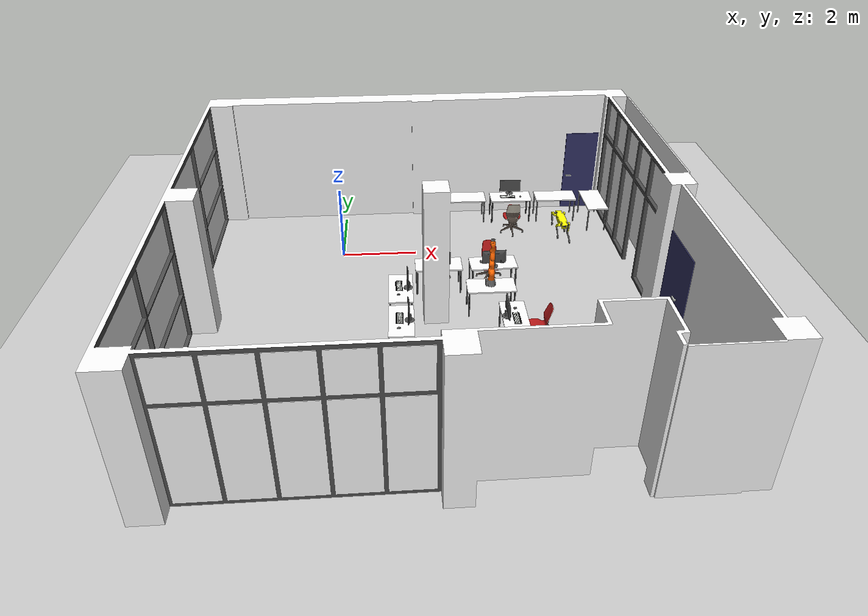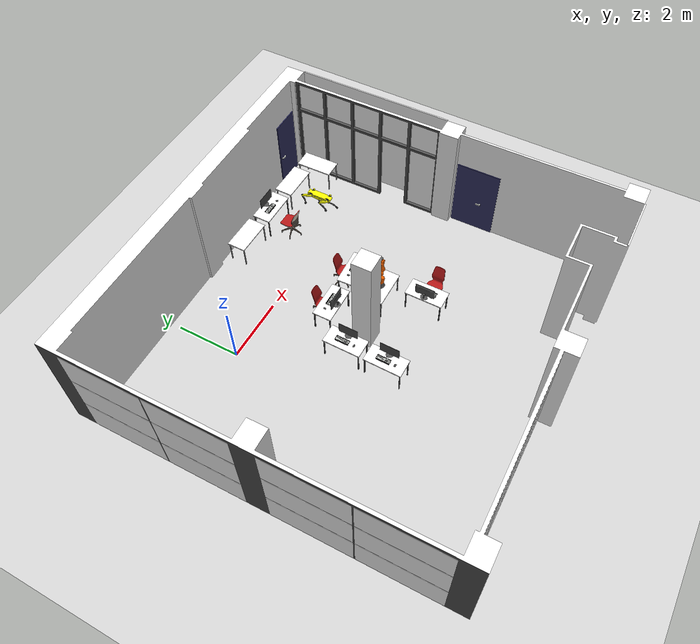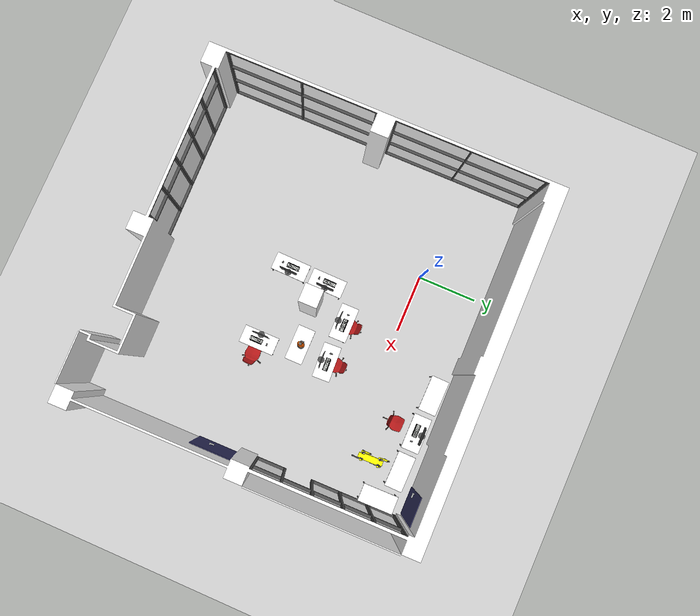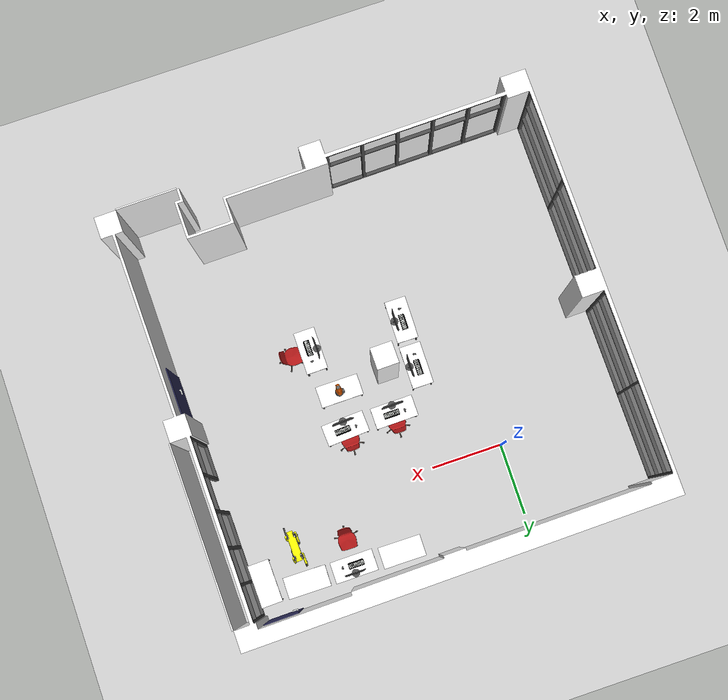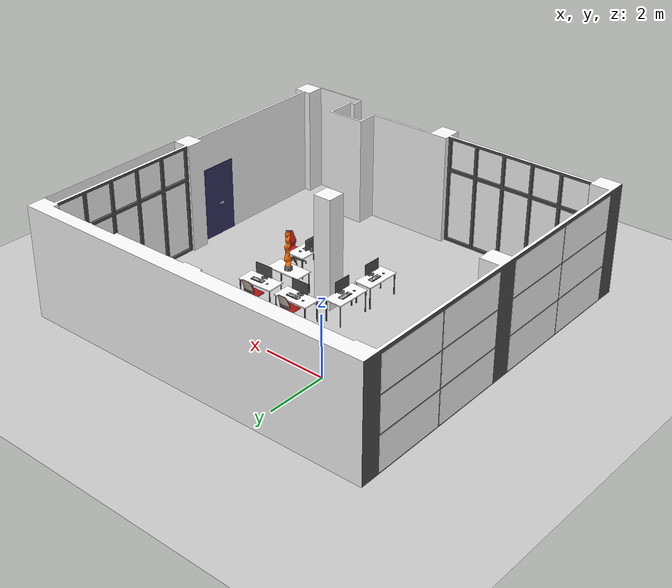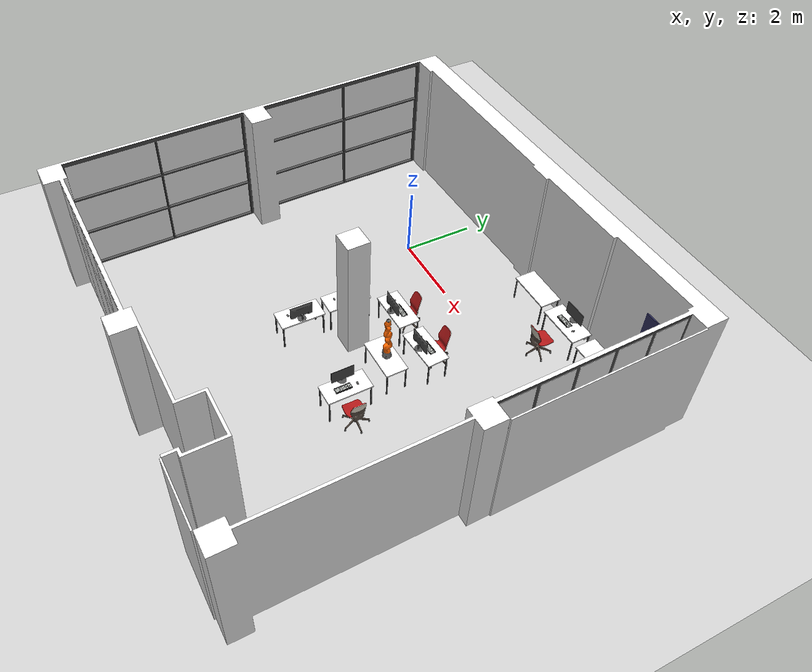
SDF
<sdf version="1.7">
 <world name="default">
  <model name="ground_plane">
   <static>1</static>
   <link name="link">
    <collision name="collision">
     <geometry><plane><normal>0 0 1</normal><size>100 100</size></plane></geometry>
     <surface>
      <contact><collide_bitmask>65535</collide_bitmask></contact>
      <friction><ode><mu>100</mu><mu2>50</mu2></ode></friction>
     </surface>
    </collision>
    <visual name="visual">
     <cast_shadows>0</cast_shadows>
     <geometry><plane><normal>0 0 1</normal><size>100 100</size></plane></geometry>
     <material>
      <script><uri>file://media/materials/scripts/gazebo.material</uri><name>Gazebo/Grey</name></script>
     </material>
    </visual>
   </link>
  </model>
  <model name="stol_i_komp">
   <link name="link_1">
    <inertial>
     <mass>1</mass>
     <inertia>
      <ixx>0.166667</ixx>
      <ixy>0</ixy>
      <ixz>0</ixz>
      <iyy>0.166667</iyy>
      <iyz>0</iyz>
      <izz>0.166667</izz>
     </inertia>
    </inertial>
    <visual name="visual">
     <geometry>
      <mesh>
       <uri>/home/slaven/catkin_ws/src/my_simulations/models/meshes/stol_i_komp.dae</uri>
       <scale>1 1 1</scale>
      </mesh>
     </geometry>
    </visual>
    <collision name="collision">
     <geometry>
      <mesh>
       <uri>/home/slaven/catkin_ws/src/my_simulations/models/meshes/stol_i_komp.dae</uri>
       <scale>1 1 1</scale>
      </mesh>
     </geometry>
     <surface>
      <friction>
       <ode><mu>1</mu><mu2>1</mu2><fdir1>0 0 0</fdir1><slip1>0</slip1><slip2>0</slip2></ode>
       <torsional>
        <coefficient>1</coefficient>
        <patch_radius>0</patch_radius>
        <surface_radius>0</surface_radius>
        <use_patch_radius>1</use_patch_radius>
        <ode><slip>0</slip></ode>
       </torsional>
      </friction>
      <bounce><restitution_coefficient>0</restitution_coefficient><threshold>1e+06</threshold></bounce>
      <contact>
       <collide_without_contact>0</collide_without_contact>
       <collide_without_contact_bitmask>1</collide_without_contact_bitmask>
       <collide_bitmask>1</collide_bitmask>
       <ode>
        <soft_cfm>0</soft_cfm>
        <soft_erp>0.2</soft_erp>
        <kp>1e+13</kp>
        <kd>1</kd>
        <max_vel>0.01</max_vel>
        <min_depth>0</min_depth>
       </ode>
       <bullet>
        <split_impulse>1</split_impulse>
        <split_impulse_penetration_threshold>-0.01</split_impulse_penetration_threshold>
        <soft_cfm>0</soft_cfm>
        <soft_erp>0.2</soft_erp>
        <kp>1e+13</kp>
        <kd>1</kd>
       </bullet>
      </contact>
     </surface>
    </collision>
   </link>
   <static>0</static>
   <pose>1.5366 -2.81232 0.699999 -0 2e-06 1.56764</pose>
  </model>
  <model name="stol_i_komp_0">
   <link name="link_1">
    <inertial>
     <mass>1</mass>
     <inertia>
      <ixx>0.166667</ixx>
      <ixy>0</ixy>
      <ixz>0</ixz>
      <iyy>0.166667</iyy>
      <iyz>0</iyz>
      <izz>0.166667</izz>
     </inertia>
    </inertial>
    <visual name="visual">
     <geometry>
      <mesh>
       <uri>/home/slaven/catkin_ws/src/my_simulations/models/meshes/stol_i_komp.dae</uri>
       <scale>1 1 1</scale>
      </mesh>
     </geometry>
    </visual>
    <collision name="collision">
     <geometry>
      <mesh>
       <uri>/home/slaven/catkin_ws/src/my_simulations/models/meshes/stol_i_komp.dae</uri>
       <scale>1 1 1</scale>
      </mesh>
     </geometry>
     <surface>
      <friction>
       <ode><mu>1</mu><mu2>1</mu2><fdir1>0 0 0</fdir1><slip1>0</slip1><slip2>0</slip2></ode>
       <torsional>
        <coefficient>1</coefficient>
        <patch_radius>0</patch_radius>
        <surface_radius>0</surface_radius>
        <use_patch_radius>1</use_patch_radius>
        <ode><slip>0</slip></ode>
       </torsional>
      </friction>
      <bounce><restitution_coefficient>0</restitution_coefficient><threshold>1e+06</threshold></bounce>
      <contact>
       <collide_without_contact>0</collide_without_contact>
       <collide_without_contact_bitmask>1</collide_without_contact_bitmask>
       <collide_bitmask>1</collide_bitmask>
       <ode>
        <soft_cfm>0</soft_cfm>
        <soft_erp>0.2</soft_erp>
        <kp>1e+13</kp>
        <kd>1</kd>
        <max_vel>0.01</max_vel>
        <min_depth>0</min_depth>
       </ode>
       <bullet>
        <split_impulse>1</split_impulse>
        <split_impulse_penetration_threshold>-0.01</split_impulse_penetration_threshold>
        <soft_cfm>0</soft_cfm>
        <soft_erp>0.2</soft_erp>
        <kp>1e+13</kp>
        <kd>1</kd>
       </bullet>
      </contact>
     </surface>
    </collision>
   </link>
   <static>0</static>
   <pose>1.52345 -4.13796 0.699999 0 -2e-06 1.56027</pose>
  </model>
  <model name="stol_i_komp_1">
   <link name="link_1">
    <inertial>
     <mass>1</mass>
     <inertia>
      <ixx>0.166667</ixx>
      <ixy>0</ixy>
      <ixz>0</ixz>
      <iyy>0.166667</iyy>
      <iyz>0</iyz>
      <izz>0.166667</izz>
     </inertia>
    </inertial>
    <visual name="visual">
     <geometry>
      <mesh>
       <uri>/home/slaven/catkin_ws/src/my_simulations/models/meshes/stol_i_komp.dae</uri>
       <scale>1 1 1</scale>
      </mesh>
     </geometry>
    </visual>
    <collision name="collision">
     <geometry>
      <mesh>
       <uri>/home/slaven/catkin_ws/src/my_simulations/models/meshes/stol_i_komp.dae</uri>
       <scale>1 1 1</scale>
      </mesh>
     </geometry>
     <surface>
      <friction>
       <ode><mu>1</mu><mu2>1</mu2><fdir1>0 0 0</fdir1><slip1>0</slip1><slip2>0</slip2></ode>
       <torsional>
        <coefficient>1</coefficient>
        <patch_radius>0</patch_radius>
        <surface_radius>0</surface_radius>
        <use_patch_radius>1</use_patch_radius>
        <ode><slip>0</slip></ode>
       </torsional>
      </friction>
      <bounce><restitution_coefficient>0</restitution_coefficient><threshold>1e+06</threshold></bounce>
      <contact>
       <collide_without_contact>0</collide_without_contact>
       <collide_without_contact_bitmask>1</collide_without_contact_bitmask>
       <collide_bitmask>1</collide_bitmask>
       <ode>
        <soft_cfm>0</soft_cfm>
        <soft_erp>0.2</soft_erp>
        <kp>1e+13</kp>
        <kd>1</kd>
        <max_vel>0.01</max_vel>
        <min_depth>0</min_depth>
       </ode>
       <bullet>
        <split_impulse>1</split_impulse>
        <split_impulse_penetration_threshold>-0.01</split_impulse_penetration_threshold>
        <soft_cfm>0</soft_cfm>
        <soft_erp>0.2</soft_erp>
        <kp>1e+13</kp>
        <kd>1</kd>
       </bullet>
      </contact>
     </surface>
    </collision>
   </link>
   <static>0</static>
   <pose>3.94366 -1.78067 0.699999 0 -2e-06 0.051701</pose>
  </model>
  <model name="stol_i_komp_2">
   <link name="link_1">
    <inertial>
     <mass>1</mass>
     <inertia>
      <ixx>0.166667</ixx>
      <ixy>0</ixy>
      <ixz>0</ixz>
      <iyy>0.166667</iyy>
      <iyz>0</iyz>
      <izz>0.166667</izz>
     </inertia>
    </inertial>
    <visual name="visual">
     <geometry>
      <mesh>
       <uri>/home/slaven/catkin_ws/src/my_simulations/models/meshes/stol_i_komp.dae</uri>
       <scale>1 1 1</scale>
      </mesh>
     </geometry>
    </visual>
    <collision name="collision">
     <geometry>
      <mesh>
       <uri>/home/slaven/catkin_ws/src/my_simulations/models/meshes/stol_i_komp.dae</uri>
       <scale>1 1 1</scale>
      </mesh>
     </geometry>
     <surface>
      <friction>
       <ode><mu>1</mu><mu2>1</mu2><fdir1>0 0 0</fdir1><slip1>0</slip1><slip2>0</slip2></ode>
       <torsional>
        <coefficient>1</coefficient>
        <patch_radius>0</patch_radius>
        <surface_radius>0</surface_radius>
        <use_patch_radius>1</use_patch_radius>
        <ode><slip>0</slip></ode>
       </torsional>
      </friction>
      <bounce><restitution_coefficient>0</restitution_coefficient><threshold>1e+06</threshold></bounce>
      <contact>
       <collide_without_contact>0</collide_without_contact>
       <collide_without_contact_bitmask>1</collide_without_contact_bitmask>
       <collide_bitmask>1</collide_bitmask>
       <ode>
        <soft_cfm>0</soft_cfm>
        <soft_erp>0.2</soft_erp>
        <kp>1e+13</kp>
        <kd>1</kd>
        <max_vel>0.01</max_vel>
        <min_depth>0</min_depth>
       </ode>
       <bullet>
        <split_impulse>1</split_impulse>
        <split_impulse_penetration_threshold>-0.01</split_impulse_penetration_threshold>
        <soft_cfm>0</soft_cfm>
        <soft_erp>0.2</soft_erp>
        <kp>1e+13</kp>
        <kd>1</kd>
       </bullet>
      </contact>
     </surface>
    </collision>
   </link>
   <static>0</static>
   <pose>2.53198 -1.77767 0.699999 0 2e-06 0.009271</pose>
  </model>
  <model name="stol_i_komp_3">
   <link name="link_1">
    <inertial>
     <mass>1</mass>
     <inertia>
      <ixx>0.166667</ixx>
      <ixy>0</ixy>
      <ixz>0</ixz>
      <iyy>0.166667</iyy>
      <iyz>0</iyz>
      <izz>0.166667</izz>
     </inertia>
    </inertial>
    <visual name="visual">
     <geometry>
      <mesh>
       <uri>/home/slaven/catkin_ws/src/my_simulations/models/meshes/stol_i_komp.dae</uri>
       <scale>1 1 1</scale>
      </mesh>
     </geometry>
    </visual>
    <collision name="collision">
     <geometry>
      <mesh>
       <uri>/home/slaven/catkin_ws/src/my_simulations/models/meshes/stol_i_komp.dae</uri>
       <scale>1 1 1</scale>
      </mesh>
     </geometry>
     <surface>
      <friction>
       <ode><mu>1</mu><mu2>1</mu2><fdir1>0 0 0</fdir1><slip1>0</slip1><slip2>0</slip2></ode>
       <torsional>
        <coefficient>1</coefficient>
        <patch_radius>0</patch_radius>
        <surface_radius>0</surface_radius>
        <use_patch_radius>1</use_patch_radius>
        <ode><slip>0</slip></ode>
       </torsional>
      </friction>
      <bounce><restitution_coefficient>0</restitution_coefficient><threshold>1e+06</threshold></bounce>
      <contact>
       <collide_without_contact>0</collide_without_contact>
       <collide_without_contact_bitmask>1</collide_without_contact_bitmask>
       <collide_bitmask>1</collide_bitmask>
       <ode>
        <soft_cfm>0</soft_cfm>
        <soft_erp>0.2</soft_erp>
        <kp>1e+13</kp>
        <kd>1</kd>
        <max_vel>0.01</max_vel>
        <min_depth>0</min_depth>
       </ode>
       <bullet>
        <split_impulse>1</split_impulse>
        <split_impulse_penetration_threshold>-0.01</split_impulse_penetration_threshold>
        <soft_cfm>0</soft_cfm>
        <soft_erp>0.2</soft_erp>
        <kp>1e+13</kp>
        <kd>1</kd>
       </bullet>
      </contact>
     </surface>
    </collision>
   </link>
   <static>0</static>
   <pose>4.1732 -4.12466 0.699999 0 -2e-06 -1.56533</pose>
  </model>
  <model name="stol">
   <link name="link_0">
    <inertial>
     <mass>1</mass>
     <inertia>
      <ixx>0.166667</ixx>
      <ixy>0</ixy>
      <ixz>0</ixz>
      <iyy>0.166667</iyy>
      <iyz>0</iyz>
      <izz>0.166667</izz>
     </inertia>
    </inertial>
    <visual name="visual">
     <geometry>
      <mesh><uri>/home/slaven/catkin_ws/src/my_simulations/models/meshes/stol.dae</uri><scale>1 1 1</scale></mesh>
     </geometry>
    </visual>
    <collision name="collision">
     <geometry>
      <mesh><uri>/home/slaven/catkin_ws/src/my_simulations/models/meshes/stol.dae</uri><scale>1 1 1</scale></mesh>
     </geometry>
     <surface>
      <friction>
       <ode><mu>1</mu><mu2>1</mu2><fdir1>0 0 0</fdir1><slip1>0</slip1><slip2>0</slip2></ode>
       <torsional>
        <coefficient>1</coefficient>
        <patch_radius>0</patch_radius>
        <surface_radius>0</surface_radius>
        <use_patch_radius>1</use_patch_radius>
        <ode><slip>0</slip></ode>
       </torsional>
      </friction>
      <bounce><restitution_coefficient>0</restitution_coefficient><threshold>1e+06</threshold></bounce>
      <contact>
       <collide_without_contact>0</collide_without_contact>
       <collide_without_contact_bitmask>1</collide_without_contact_bitmask>
       <collide_bitmask>1</collide_bitmask>
       <ode>
        <soft_cfm>0</soft_cfm>
        <soft_erp>0.2</soft_erp>
        <kp>1e+13</kp>
        <kd>1</kd>
        <max_vel>0.01</max_vel>
        <min_depth>0</min_depth>
       </ode>
       <bullet>
        <split_impulse>1</split_impulse>
        <split_impulse_penetration_threshold>-0.01</split_impulse_penetration_threshold>
        <soft_cfm>0</soft_cfm>
        <soft_erp>0.2</soft_erp>
        <kp>1e+13</kp>
        <kd>1</kd>
       </bullet>
      </contact>
     </surface>
    </collision>
   </link>
   <static>0</static>
   <pose>3.76972 -2.81672 0.699999 0 -2e-06 0.005732</pose>
  </model>
  <model name="kuka">
   <link name="link_1">
    <inertial>
     <mass>1</mass>
     <inertia>
      <ixx>0.166667</ixx>
      <ixy>0</ixy>
      <ixz>0</ixz>
      <iyy>0.166667</iyy>
      <iyz>0</iyz>
      <izz>0.166667</izz>
     </inertia>
    </inertial>
    <pose>-0.00628 -0.063343 0.019073 0 -0 0</pose>
    <visual name="visual">
     <geometry>
      <mesh>
       <uri>/home/slaven/catkin_ws/src/my_simulations/models/meshes/LBR IIWA 14 R820.dae</uri>
       <scale>1 1 1</scale>
      </mesh>
     </geometry>
    </visual>
    <collision name="collision">
     <geometry>
      <mesh>
       <uri>/home/slaven/catkin_ws/src/my_simulations/models/meshes/LBR IIWA 14 R820.dae</uri>
       <scale>1 1 1</scale>
      </mesh>
     </geometry>
     <surface>
      <friction>
       <ode><mu>1</mu><mu2>1</mu2><fdir1>0 0 0</fdir1><slip1>0</slip1><slip2>0</slip2></ode>
       <torsional>
        <coefficient>1</coefficient>
        <patch_radius>0</patch_radius>
        <surface_radius>0</surface_radius>
        <use_patch_radius>1</use_patch_radius>
        <ode><slip>0</slip></ode>
       </torsional>
      </friction>
      <bounce><restitution_coefficient>0</restitution_coefficient><threshold>1e+06</threshold></bounce>
      <contact>
       <collide_without_contact>0</collide_without_contact>
       <collide_without_contact_bitmask>1</collide_without_contact_bitmask>
       <collide_bitmask>1</collide_bitmask>
       <ode>
        <soft_cfm>0</soft_cfm>
        <soft_erp>0.2</soft_erp>
        <kp>1e+13</kp>
        <kd>1</kd>
        <max_vel>0.01</max_vel>
        <min_depth>0</min_depth>
       </ode>
       <bullet>
        <split_impulse>1</split_impulse>
        <split_impulse_penetration_threshold>-0.01</split_impulse_penetration_threshold>
        <soft_cfm>0</soft_cfm>
        <soft_erp>0.2</soft_erp>
        <kp>1e+13</kp>
        <kd>1</kd>
       </bullet>
      </contact>
     </surface>
    </collision>
   </link>
   <static>0</static>
   <pose>3.77941 -2.71983 0.715929 -0 -2.6e-05 0.011747</pose>
  </model>
  <model name="zidovi3">
   <link name="link_0">
    <inertial>
     <mass>1</mass>
     <inertia>
      <ixx>0.166667</ixx>
      <ixy>0</ixy>
      <ixz>0</ixz>
      <iyy>0.166667</iyy>
      <iyz>0</iyz>
      <izz>0.166667</izz>
     </inertia>
    </inertial>
    <pose>-0 -2e-06 0 0 -0 0</pose>
    <visual name="visual">
     <geometry>
      <mesh>
       <uri>/home/slaven/catkin_ws/src/my_simulations/models/meshes/zidovi3.dae</uri>
       <scale>1 1 1</scale>
      </mesh>
     </geometry>
    </visual>
    <collision name="collision">
     <geometry>
      <mesh>
       <uri>/home/slaven/catkin_ws/src/my_simulations/models/meshes/zidovi3.dae</uri>
       <scale>1 1 1</scale>
      </mesh>
     </geometry>
     <surface>
      <friction>
       <ode><mu>1</mu><mu2>1</mu2><fdir1>0 0 0</fdir1><slip1>0</slip1><slip2>0</slip2></ode>
       <torsional>
        <coefficient>1</coefficient>
        <patch_radius>0</patch_radius>
        <surface_radius>0</surface_radius>
        <use_patch_radius>1</use_patch_radius>
        <ode><slip>0</slip></ode>
       </torsional>
      </friction>
      <bounce><restitution_coefficient>0</restitution_coefficient><threshold>1e+06</threshold></bounce>
      <contact>
       <collide_without_contact>0</collide_without_contact>
       <collide_without_contact_bitmask>1</collide_without_contact_bitmask>
       <collide_bitmask>1</collide_bitmask>
       <ode>
        <soft_cfm>0</soft_cfm>
        <soft_erp>0.2</soft_erp>
        <kp>1e+13</kp>
        <kd>1</kd>
        <max_vel>0.01</max_vel>
        <min_depth>0</min_depth>
       </ode>
       <bullet>
        <split_impulse>1</split_impulse>
        <split_impulse_penetration_threshold>-0.01</split_impulse_penetration_threshold>
        <soft_cfm>0</soft_cfm>
        <soft_erp>0.2</soft_erp>
        <kp>1e+13</kp>
        <kd>1</kd>
       </bullet>
      </contact>
     </surface>
    </collision>
   </link>
   <static>0</static>
   <pose>2.38925 -3.02063 -0 0 -0 0.013755</pose>
  </model>
  <model name="stol_i_komp_5">
   <link name="link_1">
    <inertial>
     <mass>1</mass>
     <inertia>
      <ixx>0.166667</ixx>
      <ixy>0</ixy>
      <ixz>0</ixz>
      <iyy>0.166667</iyy>
      <iyz>0</iyz>
      <izz>0.166667</izz>
     </inertia>
    </inertial>
    <visual name="visual">
     <geometry>
      <mesh>
       <uri>/home/slaven/catkin_ws/src/my_simulations/models/meshes/stol_i_komp.dae</uri>
       <scale>1 1 1</scale>
      </mesh>
     </geometry>
    </visual>
    <collision name="collision">
     <geometry>
      <mesh>
       <uri>/home/slaven/catkin_ws/src/my_simulations/models/meshes/stol_i_komp.dae</uri>
       <scale>1 1 1</scale>
      </mesh>
     </geometry>
     <surface>
      <friction>
       <ode><mu>1</mu><mu2>1</mu2><fdir1>0 0 0</fdir1><slip1>0</slip1><slip2>0</slip2></ode>
       <torsional>
        <coefficient>1</coefficient>
        <patch_radius>0</patch_radius>
        <surface_radius>0</surface_radius>
        <use_patch_radius>1</use_patch_radius>
        <ode><slip>0</slip></ode>
       </torsional>
      </friction>
      <bounce><restitution_coefficient>0</restitution_coefficient><threshold>1e+06</threshold></bounce>
      <contact>
       <collide_without_contact>0</collide_without_contact>
       <collide_without_contact_bitmask>1</collide_without_contact_bitmask>
       <collide_bitmask>1</collide_bitmask>
       <ode>
        <soft_cfm>0</soft_cfm>
        <soft_erp>0.2</soft_erp>
        <kp>1e+13</kp>
        <kd>1</kd>
        <max_vel>0.01</max_vel>
        <min_depth>0</min_depth>
       </ode>
       <bullet>
        <split_impulse>1</split_impulse>
        <split_impulse_penetration_threshold>-0.01</split_impulse_penetration_threshold>
        <soft_cfm>0</soft_cfm>
        <soft_erp>0.2</soft_erp>
        <kp>1e+13</kp>
        <kd>1</kd>
       </bullet>
      </contact>
     </surface>
    </collision>
   </link>
   <static>0</static>
   <pose>4.91228 1.84464 0.699999 0 2e-06 -3.13605</pose>
  </model>
  <model name="stol_6">
   <link name="link_0">
    <inertial>
     <mass>1</mass>
     <inertia>
      <ixx>0.166667</ixx>
      <ixy>0</ixy>
      <ixz>0</ixz>
      <iyy>0.166667</iyy>
      <iyz>0</iyz>
      <izz>0.166667</izz>
     </inertia>
    </inertial>
    <visual name="visual">
     <geometry>
      <mesh><uri>/home/slaven/catkin_ws/src/my_simulations/models/meshes/stol.dae</uri><scale>1 1 1</scale></mesh>
     </geometry>
    </visual>
    <collision name="collision">
     <geometry>
      <mesh><uri>/home/slaven/catkin_ws/src/my_simulations/models/meshes/stol.dae</uri><scale>1 1 1</scale></mesh>
     </geometry>
     <surface>
      <friction>
       <ode><mu>1</mu><mu2>1</mu2><fdir1>0 0 0</fdir1><slip1>0</slip1><slip2>0</slip2></ode>
       <torsional>
        <coefficient>1</coefficient>
        <patch_radius>0</patch_radius>
        <surface_radius>0</surface_radius>
        <use_patch_radius>1</use_patch_radius>
        <ode><slip>0</slip></ode>
       </torsional>
      </friction>
      <bounce><restitution_coefficient>0</restitution_coefficient><threshold>1e+06</threshold></bounce>
      <contact>
       <collide_without_contact>0</collide_without_contact>
       <collide_without_contact_bitmask>1</collide_without_contact_bitmask>
       <collide_bitmask>1</collide_bitmask>
       <ode>
        <soft_cfm>0</soft_cfm>
        <soft_erp>0.2</soft_erp>
        <kp>1e+13</kp>
        <kd>1</kd>
        <max_vel>0.01</max_vel>
        <min_depth>0</min_depth>
       </ode>
       <bullet>
        <split_impulse>1</split_impulse>
        <split_impulse_penetration_threshold>-0.01</split_impulse_penetration_threshold>
        <soft_cfm>0</soft_cfm>
        <soft_erp>0.2</soft_erp>
        <kp>1e+13</kp>
        <kd>1</kd>
       </bullet>
      </contact>
     </surface>
    </collision>
   </link>
   <static>0</static>
   <pose>3.55228 1.88847 0.699999 0 -2e-06 -0.006371</pose>
  </model>
  <model name="stol_7">
   <link name="link_0">
    <inertial>
     <mass>1</mass>
     <inertia>
      <ixx>0.166667</ixx>
      <ixy>0</ixy>
      <ixz>0</ixz>
      <iyy>0.166667</iyy>
      <iyz>0</iyz>
      <izz>0.166667</izz>
     </inertia>
    </inertial>
    <visual name="visual">
     <geometry>
      <mesh><uri>/home/slaven/catkin_ws/src/my_simulations/models/meshes/stol.dae</uri><scale>1 1 1</scale></mesh>
     </geometry>
    </visual>
    <collision name="collision">
     <geometry>
      <mesh><uri>/home/slaven/catkin_ws/src/my_simulations/models/meshes/stol.dae</uri><scale>1 1 1</scale></mesh>
     </geometry>
     <surface>
      <friction>
       <ode><mu>1</mu><mu2>1</mu2><fdir1>0 0 0</fdir1><slip1>0</slip1><slip2>0</slip2></ode>
       <torsional>
        <coefficient>1</coefficient>
        <patch_radius>0</patch_radius>
        <surface_radius>0</surface_radius>
        <use_patch_radius>1</use_patch_radius>
        <ode><slip>0</slip></ode>
       </torsional>
      </friction>
      <bounce><restitution_coefficient>0</restitution_coefficient><threshold>1e+06</threshold></bounce>
      <contact>
       <collide_without_contact>0</collide_without_contact>
       <collide_without_contact_bitmask>1</collide_without_contact_bitmask>
       <collide_bitmask>1</collide_bitmask>
       <ode>
        <soft_cfm>0</soft_cfm>
        <soft_erp>0.2</soft_erp>
        <kp>1e+13</kp>
        <kd>1</kd>
        <max_vel>0.01</max_vel>
        <min_depth>0</min_depth>
       </ode>
       <bullet>
        <split_impulse>1</split_impulse>
        <split_impulse_penetration_threshold>-0.01</split_impulse_penetration_threshold>
        <soft_cfm>0</soft_cfm>
        <soft_erp>0.2</soft_erp>
        <kp>1e+13</kp>
        <kd>1</kd>
       </bullet>
      </contact>
     </surface>
    </collision>
   </link>
   <static>0</static>
   <pose>6.25359 1.83429 0.699999 -0 2e-06 -0.008669</pose>
  </model>
  <model name="stol_8">
   <link name="link_0">
    <inertial>
     <mass>1</mass>
     <inertia>
      <ixx>0.166667</ixx>
      <ixy>0</ixy>
      <ixz>0</ixz>
      <iyy>0.166667</iyy>
      <iyz>0</iyz>
      <izz>0.166667</izz>
     </inertia>
    </inertial>
    <visual name="visual">
     <geometry>
      <mesh><uri>/home/slaven/catkin_ws/src/my_simulations/models/meshes/stol.dae</uri><scale>1 1 1</scale></mesh>
     </geometry>
    </visual>
    <collision name="collision">
     <geometry>
      <mesh><uri>/home/slaven/catkin_ws/src/my_simulations/models/meshes/stol.dae</uri><scale>1 1 1</scale></mesh>
     </geometry>
     <surface>
      <friction>
       <ode><mu>1</mu><mu2>1</mu2><fdir1>0 0 0</fdir1><slip1>0</slip1><slip2>0</slip2></ode>
       <torsional>
        <coefficient>1</coefficient>
        <patch_radius>0</patch_radius>
        <surface_radius>0</surface_radius>
        <use_patch_radius>1</use_patch_radius>
        <ode><slip>0</slip></ode>
       </torsional>
      </friction>
      <bounce><restitution_coefficient>0</restitution_coefficient><threshold>1e+06</threshold></bounce>
      <contact>
       <collide_without_contact>0</collide_without_contact>
       <collide_without_contact_bitmask>1</collide_without_contact_bitmask>
       <collide_bitmask>1</collide_bitmask>
       <ode>
        <soft_cfm>0</soft_cfm>
        <soft_erp>0.2</soft_erp>
        <kp>1e+13</kp>
        <kd>1</kd>
        <max_vel>0.01</max_vel>
        <min_depth>0</min_depth>
       </ode>
       <bullet>
        <split_impulse>1</split_impulse>
        <split_impulse_penetration_threshold>-0.01</split_impulse_penetration_threshold>
        <soft_cfm>0</soft_cfm>
        <soft_erp>0.2</soft_erp>
        <kp>1e+13</kp>
        <kd>1</kd>
       </bullet>
      </contact>
     </surface>
    </collision>
   </link>
   <static>0</static>
   <pose>7.3448 1.51242 0.699999 0 -2e-06 -1.54916</pose>
  </model>
  <model name="spot">
   <link name="link_0">
    <inertial>
     <mass>1</mass>
     <inertia>
      <ixx>0.166667</ixx>
      <ixy>0</ixy>
      <ixz>0</ixz>
      <iyy>0.166667</iyy>
      <iyz>0</iyz>
      <izz>0.166667</izz>
     </inertia>
    </inertial>
    <pose>0 -0 -0 1.57362 -0 0</pose>
    <visual name="visual">
     <geometry>
      <mesh><uri>/home/slaven/catkin_ws/src/my_simulations/models/meshes/spot.dae</uri><scale>1 1 1</scale></mesh>
     </geometry>
    </visual>
    <collision name="collision">
     <geometry>
      <mesh><uri>/home/slaven/catkin_ws/src/my_simulations/models/meshes/spot.dae</uri><scale>1 1 1</scale></mesh>
     </geometry>
     <surface>
      <friction>
       <ode><mu>1</mu><mu2>1</mu2><fdir1>0 0 0</fdir1><slip1>0</slip1><slip2>0</slip2></ode>
       <torsional>
        <coefficient>1</coefficient>
        <patch_radius>0</patch_radius>
        <surface_radius>0</surface_radius>
        <use_patch_radius>1</use_patch_radius>
        <ode><slip>0</slip></ode>
       </torsional>
      </friction>
      <bounce><restitution_coefficient>0</restitution_coefficient><threshold>1e+06</threshold></bounce>
      <contact>
       <collide_without_contact>0</collide_without_contact>
       <collide_without_contact_bitmask>1</collide_without_contact_bitmask>
       <collide_bitmask>1</collide_bitmask>
       <ode>
        <soft_cfm>0</soft_cfm>
        <soft_erp>0.2</soft_erp>
        <kp>1e+13</kp>
        <kd>1</kd>
        <max_vel>0.01</max_vel>
        <min_depth>0</min_depth>
       </ode>
       <bullet>
        <split_impulse>1</split_impulse>
        <split_impulse_penetration_threshold>-0.01</split_impulse_penetration_threshold>
        <soft_cfm>0</soft_cfm>
        <soft_erp>0.2</soft_erp>
        <kp>1e+13</kp>
        <kd>1</kd>
       </bullet>
      </contact>
     </surface>
    </collision>
   </link>
   <static>0</static>
   <pose>6.28781 0.723523 0.423671 -0.0028 -0.000227 0.0299</pose>
  </model>
  <model name="stolac">
   <link name="link_0">
    <inertial>
     <mass>1</mass>
     <inertia>
      <ixx>0.166667</ixx>
      <ixy>0</ixy>
      <ixz>0</ixz>
      <iyy>0.166667</iyy>
      <iyz>0</iyz>
      <izz>0.166667</izz>
     </inertia>
    </inertial>
    <pose>0 0 0 1.60577 -0 0</pose>
    <visual name="visual">
     <geometry>
      <mesh><uri>/home/slaven/catkin_ws/src/my_simulations/models/meshes/stolac.dae</uri><scale>1 1 1</scale></mesh>
     </geometry>
    </visual>
    <collision name="collision">
     <geometry>
      <mesh><uri>/home/slaven/catkin_ws/src/my_simulations/models/meshes/stolac.dae</uri><scale>1 1 1</scale></mesh>
     </geometry>
     <surface>
      <friction>
       <ode><mu>1</mu><mu2>1</mu2><fdir1>0 0 0</fdir1><slip1>0</slip1><slip2>0</slip2></ode>
       <torsional>
        <coefficient>1</coefficient>
        <patch_radius>0</patch_radius>
        <surface_radius>0</surface_radius>
        <use_patch_radius>1</use_patch_radius>
        <ode><slip>0</slip></ode>
       </torsional>
      </friction>
      <bounce><restitution_coefficient>0</restitution_coefficient><threshold>1e+06</threshold></bounce>
      <contact>
       <collide_without_contact>0</collide_without_contact>
       <collide_without_contact_bitmask>1</collide_without_contact_bitmask>
       <collide_bitmask>1</collide_bitmask>
       <ode>
        <soft_cfm>0</soft_cfm>
        <soft_erp>0.2</soft_erp>
        <kp>1e+13</kp>
        <kd>1</kd>
        <max_vel>0.01</max_vel>
        <min_depth>0</min_depth>
       </ode>
       <bullet>
        <split_impulse>1</split_impulse>
        <split_impulse_penetration_threshold>-0.01</split_impulse_penetration_threshold>
        <soft_cfm>0</soft_cfm>
        <soft_erp>0.2</soft_erp>
        <kp>1e+13</kp>
        <kd>1</kd>
       </bullet>
      </contact>
     </surface>
    </collision>
   </link>
   <static>0</static>
   <pose>4.87036 1.06416 0.444 -0.034974 -0 3.12462</pose>
  </model>
  <model name="stolac_4">
   <link name="link_0">
    <inertial>
     <mass>1</mass>
     <inertia>
      <ixx>0.166667</ixx>
      <ixy>0</ixy>
      <ixz>0</ixz>
      <iyy>0.166667</iyy>
      <iyz>0</iyz>
      <izz>0.166667</izz>
     </inertia>
    </inertial>
    <pose>0 0 0 1.60577 -0 0</pose>
    <visual name="visual">
     <geometry>
      <mesh><uri>/home/slaven/catkin_ws/src/my_simulations/models/meshes/stolac.dae</uri><scale>1 1 1</scale></mesh>
     </geometry>
    </visual>
    <collision name="collision">
     <geometry>
      <mesh><uri>/home/slaven/catkin_ws/src/my_simulations/models/meshes/stolac.dae</uri><scale>1 1 1</scale></mesh>
     </geometry>
     <surface>
      <friction>
       <ode><mu>1</mu><mu2>1</mu2><fdir1>0 0 0</fdir1><slip1>0</slip1><slip2>0</slip2></ode>
       <torsional>
        <coefficient>1</coefficient>
        <patch_radius>0</patch_radius>
        <surface_radius>0</surface_radius>
        <use_patch_radius>1</use_patch_radius>
        <ode><slip>0</slip></ode>
       </torsional>
      </friction>
      <bounce><restitution_coefficient>0</restitution_coefficient><threshold>1e+06</threshold></bounce>
      <contact>
       <collide_without_contact>0</collide_without_contact>
       <collide_without_contact_bitmask>1</collide_without_contact_bitmask>
       <collide_bitmask>1</collide_bitmask>
       <ode>
        <soft_cfm>0</soft_cfm>
        <soft_erp>0.2</soft_erp>
        <kp>1e+13</kp>
        <kd>1</kd>
        <max_vel>0.01</max_vel>
        <min_depth>0</min_depth>
       </ode>
       <bullet>
        <split_impulse>1</split_impulse>
        <split_impulse_penetration_threshold>-0.01</split_impulse_penetration_threshold>
        <soft_cfm>0</soft_cfm>
        <soft_erp>0.2</soft_erp>
        <kp>1e+13</kp>
        <kd>1</kd>
       </bullet>
      </contact>
     </surface>
    </collision>
   </link>
   <static>0</static>
   <pose>3.91323 -1.40017 0.443994 -0.034983 1.8e-05 0.00775</pose>
  </model>
  <model name="stolac_5">
   <link name="link_0">
    <inertial>
     <mass>1</mass>
     <inertia>
      <ixx>0.166667</ixx>
      <ixy>0</ixy>
      <ixz>0</ixz>
      <iyy>0.166667</iyy>
      <iyz>0</iyz>
      <izz>0.166667</izz>
     </inertia>
    </inertial>
    <pose>0 0 0 1.60577 -0 0</pose>
    <visual name="visual">
     <geometry>
      <mesh><uri>/home/slaven/catkin_ws/src/my_simulations/models/meshes/stolac.dae</uri><scale>1 1 1</scale></mesh>
     </geometry>
    </visual>
    <collision name="collision">
     <geometry>
      <mesh><uri>/home/slaven/catkin_ws/src/my_simulations/models/meshes/stolac.dae</uri><scale>1 1 1</scale></mesh>
     </geometry>
     <surface>
      <friction>
       <ode><mu>1</mu><mu2>1</mu2><fdir1>0 0 0</fdir1><slip1>0</slip1><slip2>0</slip2></ode>
       <torsional>
        <coefficient>1</coefficient>
        <patch_radius>0</patch_radius>
        <surface_radius>0</surface_radius>
        <use_patch_radius>1</use_patch_radius>
        <ode><slip>0</slip></ode>
       </torsional>
      </friction>
      <bounce><restitution_coefficient>0</restitution_coefficient><threshold>1e+06</threshold></bounce>
      <contact>
       <collide_without_contact>0</collide_without_contact>
       <collide_without_contact_bitmask>1</collide_without_contact_bitmask>
       <collide_bitmask>1</collide_bitmask>
       <ode>
        <soft_cfm>0</soft_cfm>
        <soft_erp>0.2</soft_erp>
        <kp>1e+13</kp>
        <kd>1</kd>
        <max_vel>0.01</max_vel>
        <min_depth>0</min_depth>
       </ode>
       <bullet>
        <split_impulse>1</split_impulse>
        <split_impulse_penetration_threshold>-0.01</split_impulse_penetration_threshold>
        <soft_cfm>0</soft_cfm>
        <soft_erp>0.2</soft_erp>
        <kp>1e+13</kp>
        <kd>1</kd>
       </bullet>
      </contact>
     </surface>
    </collision>
   </link>
   <static>0</static>
   <pose>2.54684 -1.45163 0.443996 -0.034963 3e-06 -0.000999</pose>
  </model>
  <model name="stolac_6">
   <link name="link_0">
    <inertial>
     <mass>1</mass>
     <inertia>
      <ixx>0.166667</ixx>
      <ixy>0</ixy>
      <ixz>0</ixz>
      <iyy>0.166667</iyy>
      <iyz>0</iyz>
      <izz>0.166667</izz>
     </inertia>
    </inertial>
    <pose>0 0 0 1.60577 -0 0</pose>
    <visual name="visual">
     <geometry>
      <mesh><uri>/home/slaven/catkin_ws/src/my_simulations/models/meshes/stolac.dae</uri><scale>1 1 1</scale></mesh>
     </geometry>
    </visual>
    <collision name="collision">
     <geometry>
      <mesh><uri>/home/slaven/catkin_ws/src/my_simulations/models/meshes/stolac.dae</uri><scale>1 1 1</scale></mesh>
     </geometry>
     <surface>
      <friction>
       <ode><mu>1</mu><mu2>1</mu2><fdir1>0 0 0</fdir1><slip1>0</slip1><slip2>0</slip2></ode>
       <torsional>
        <coefficient>1</coefficient>
        <patch_radius>0</patch_radius>
        <surface_radius>0</surface_radius>
        <use_patch_radius>1</use_patch_radius>
        <ode><slip>0</slip></ode>
       </torsional>
      </friction>
      <bounce><restitution_coefficient>0</restitution_coefficient><threshold>1e+06</threshold></bounce>
      <contact>
       <collide_without_contact>0</collide_without_contact>
       <collide_without_contact_bitmask>1</collide_without_contact_bitmask>
       <collide_bitmask>1</collide_bitmask>
       <ode>
        <soft_cfm>0</soft_cfm>
        <soft_erp>0.2</soft_erp>
        <kp>1e+13</kp>
        <kd>1</kd>
        <max_vel>0.01</max_vel>
        <min_depth>0</min_depth>
       </ode>
       <bullet>
        <split_impulse>1</split_impulse>
        <split_impulse_penetration_threshold>-0.01</split_impulse_penetration_threshold>
        <soft_cfm>0</soft_cfm>
        <soft_erp>0.2</soft_erp>
        <kp>1e+13</kp>
        <kd>1</kd>
       </bullet>
      </contact>
     </surface>
    </collision>
   </link>
   <static>0</static>
   <pose>4.74969 -4.15643 0.444001 -0.034976 1e-06 -1.58553</pose>
  </model>
 </world>
</sdf>
